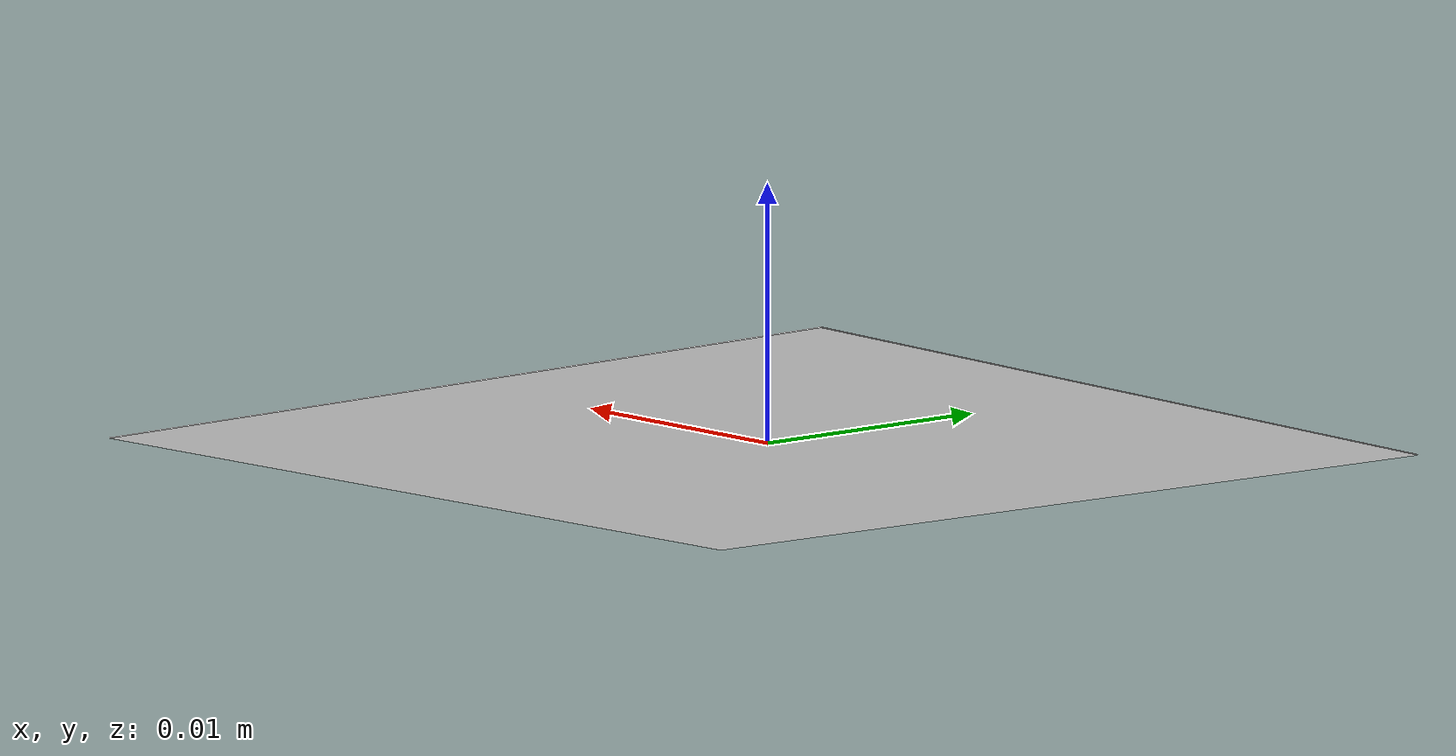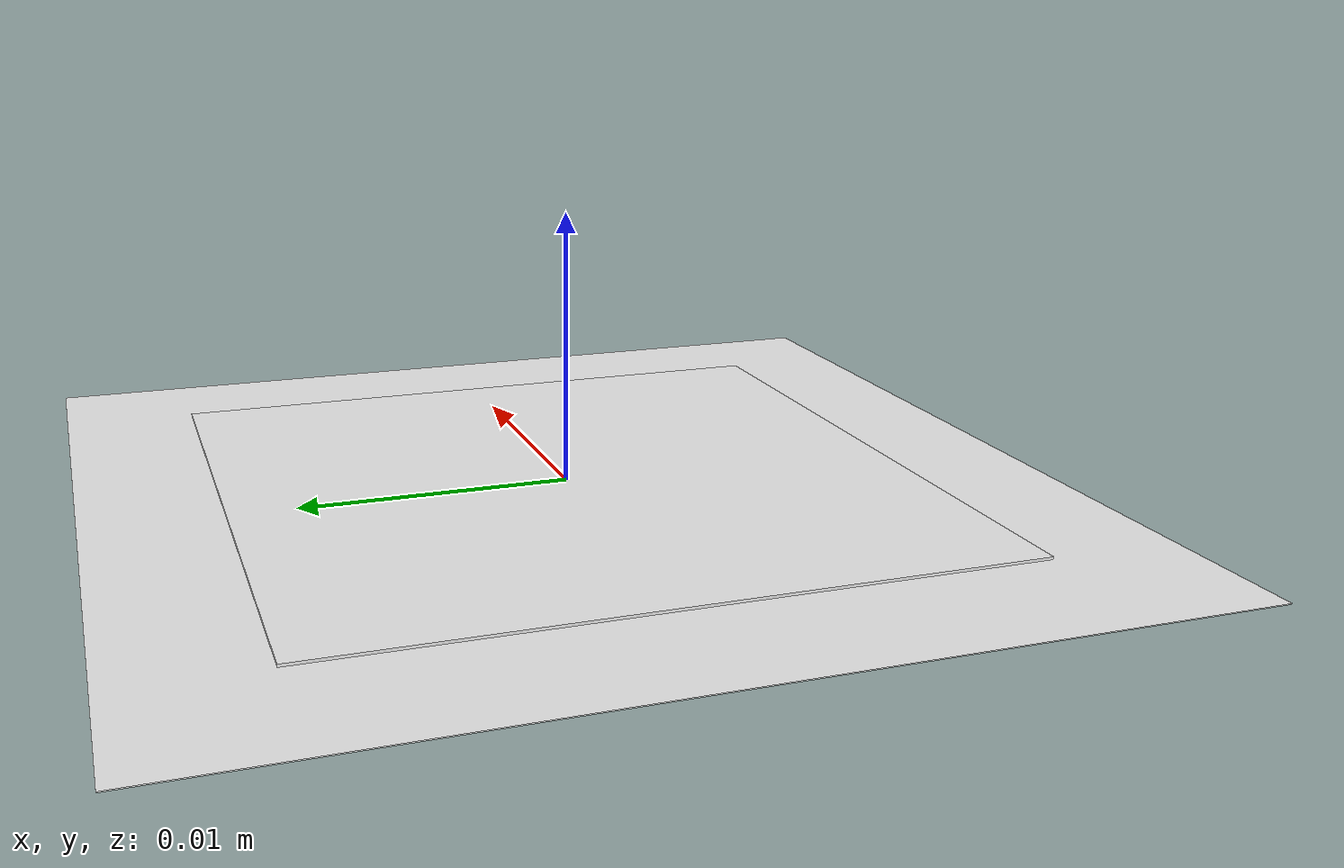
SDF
<?xml version="1.0" encoding="UTF-8"?>
<sdf version="1.7">
  <model name="arucotag_101">
    <static>true</static>
    <link name="base_link">

      <visual name="white_border">
        <pose>0 0 -0.0001 0 0 0</pose>
        <geometry><plane><normal>0 0 1</normal><size>0.035 0.035</size></plane></geometry>
        <material>
          <ambient>1 1 1 1</ambient>
          <diffuse>1 1 1 1</diffuse>
          <specular>0 0 0 1</specular>
        </material>
      </visual>

      <visual name="aruco_visual">
        <pose>0 0 0.0001 0 0 0</pose>
        <geometry><box><size>0.025 0.025 0.0001</size></box></geometry>
        <material>
          <ambient>1 1 1 1</ambient>
          <diffuse>1 1 1 1</diffuse>
          <specular>0 0 0 1</specular>
          <pbr>
            <metal>
              <albedo_map>model://arucotag_101/aruco-101.png</albedo_map>
            </metal>
          </pbr>
        </material>
      </visual>

    </link>
  </model>
</sdf>
